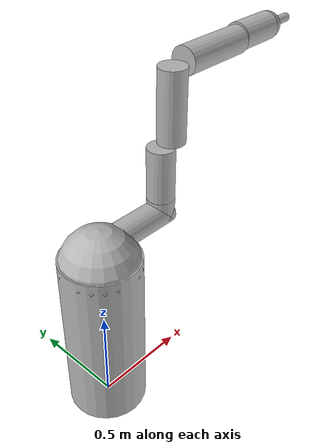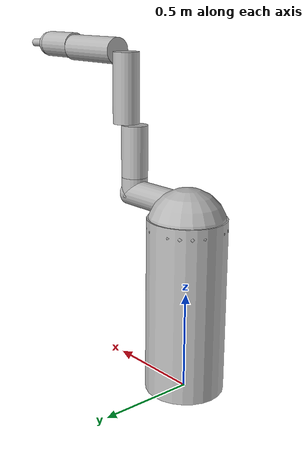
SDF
<?xml version='1.0'?>
<sdf version='1.6'>
		<model name="pmbaxter4">
			<self_collide>true</self_collide>
			<pose>0.0 0.0 0.0 0.0 0.0 0.0</pose>
			<!-- Start of parts of the pmodel pmbaxter4 -->
			<!-- End of parts of the pmodel pmbaxter4 -->

			<!-- Start of links of the pmodel pmbaxter4 -->
			<!-- link full name is pmbaxter4::LiBase -->
			<link name="1-LiBase">
					<pose>0.0 0.0 0.0 0.0 0.0 0.0</pose>
					<inertial>
						<pose>0.0 0.0 0.0 0.0 0.0 0.0</pose>
						<inertia>
							<ixx>1.0</ixx>
							<ixy>0.0</ixy>
							<ixz>0.0</ixz>
							<iyy>1.0</iyy>
							<iyz>0.0</iyz>
							<izz>1.0</izz>
						</inertia>
						<mass>1.0</mass>
					</inertial>
					<!-- body full name is pmbaxter4::LiBase::CyB0 -->
					<collision name="1--CyB0">
						<laser_retro>0.0</laser_retro>
						<pose>0.0 0.0 0.44999998807907104 0.0 0.0 0.0</pose>
						<geometry>
							<cylinder>
								<radius>0.20000000298023224</radius>
								<length>0.8999999761581421</length>
							</cylinder>
						</geometry>
						<surface>
							<bounce>
								<restitution_coefficient>0.0</restitution_coefficient>
								<threshold>100000.0</threshold>
							</bounce>
							<friction>
								<ode>
									<mu>1.0</mu>
									<mu2>1.0</mu2>
									<fdir1>0.0 0.0 0.0</fdir1>
									<slip1>0.0</slip1>
									<slip2>0.0</slip2>
								</ode>
								<torsional>
									<coefficient>1.0</coefficient>
									<surface_radius>0.0</surface_radius>
								</torsional>
							</friction>
						</surface>
					</collision>
					<visual name="1--CyB0">
						<laser_retro>0.0</laser_retro>
						<pose>0.0 0.0 0.44999998807907104 0.0 0.0 0.0</pose>
						<geometry>
							<cylinder>
								<radius>0.20000000298023224</radius>
								<length>0.8999999761581421</length>
							</cylinder>
						</geometry>
						<surface>
							<bounce>
								<restitution_coefficient>0.0</restitution_coefficient>
								<threshold>100000.0</threshold>
							</bounce>
							<friction>
								<ode>
									<mu>1.0</mu>
									<mu2>1.0</mu2>
									<fdir1>0.0 0.0 0.0</fdir1>
									<slip1>0.0</slip1>
									<slip2>0.0</slip2>
								</ode>
								<torsional>
									<coefficient>1.0</coefficient>
									<surface_radius>0.0</surface_radius>
								</torsional>
							</friction>
						</surface>
					</visual>
					<!-- body full name is pmbaxter4::LiBase::CyB1 -->
					<collision name="2--CyB1">
						<laser_retro>0.0</laser_retro>
						<pose>0.20000000298023224 0.0 0.949999988079071 0.0 -1.5707499980926514 0.0</pose>
						<geometry>
							<cylinder>
								<radius>0.0689999982714653</radius>
								<length>0.47099998593330383</length>
							</cylinder>
						</geometry>
						<surface>
							<bounce>
								<restitution_coefficient>0.0</restitution_coefficient>
								<threshold>100000.0</threshold>
							</bounce>
							<friction>
								<ode>
									<mu>1.0</mu>
									<mu2>1.0</mu2>
									<fdir1>0.0 0.0 0.0</fdir1>
									<slip1>0.0</slip1>
									<slip2>0.0</slip2>
								</ode>
								<torsional>
									<coefficient>1.0</coefficient>
									<surface_radius>0.0</surface_radius>
								</torsional>
							</friction>
						</surface>
					</collision>
					<visual name="2--CyB1">
						<laser_retro>0.0</laser_retro>
						<pose>0.20000000298023224 0.0 0.949999988079071 0.0 -1.5707499980926514 0.0</pose>
						<geometry>
							<cylinder>
								<radius>0.0689999982714653</radius>
								<length>0.47099998593330383</length>
							</cylinder>
						</geometry>
						<surface>
							<bounce>
								<restitution_coefficient>0.0</restitution_coefficient>
								<threshold>100000.0</threshold>
							</bounce>
							<friction>
								<ode>
									<mu>1.0</mu>
									<mu2>1.0</mu2>
									<fdir1>0.0 0.0 0.0</fdir1>
									<slip1>0.0</slip1>
									<slip2>0.0</slip2>
								</ode>
								<torsional>
									<coefficient>1.0</coefficient>
									<surface_radius>0.0</surface_radius>
								</torsional>
							</friction>
						</surface>
					</visual>
					<!-- body full name is pmbaxter4::LiBase::CyB2 -->
					<collision name="3--CyB2">
						<laser_retro>0.0</laser_retro>
						<pose>0.4000000059604645 0.0 0.984499990940094 0.0 0.0 0.0</pose>
						<geometry>
							<cylinder>
								<radius>0.0689999982714653</radius>
								<length>0.10000000149011612</length>
							</cylinder>
						</geometry>
						<surface>
							<bounce>
								<restitution_coefficient>0.0</restitution_coefficient>
								<threshold>100000.0</threshold>
							</bounce>
							<friction>
								<ode>
									<mu>1.0</mu>
									<mu2>1.0</mu2>
									<fdir1>0.0 0.0 0.0</fdir1>
									<slip1>0.0</slip1>
									<slip2>0.0</slip2>
								</ode>
								<torsional>
									<coefficient>1.0</coefficient>
									<surface_radius>0.0</surface_radius>
								</torsional>
							</friction>
						</surface>
					</collision>
					<visual name="3--CyB2">
						<laser_retro>0.0</laser_retro>
						<pose>0.4000000059604645 0.0 0.984499990940094 0.0 0.0 0.0</pose>
						<geometry>
							<cylinder>
								<radius>0.0689999982714653</radius>
								<length>0.10000000149011612</length>
							</cylinder>
						</geometry>
						<surface>
							<bounce>
								<restitution_coefficient>0.0</restitution_coefficient>
								<threshold>100000.0</threshold>
							</bounce>
							<friction>
								<ode>
									<mu>1.0</mu>
									<mu2>1.0</mu2>
									<fdir1>0.0 0.0 0.0</fdir1>
									<slip1>0.0</slip1>
									<slip2>0.0</slip2>
								</ode>
								<torsional>
									<coefficient>1.0</coefficient>
									<surface_radius>0.0</surface_radius>
								</torsional>
							</friction>
						</surface>
					</visual>
					<!-- body full name is pmbaxter4::LiBase::SpB -->
					<collision name="4--SpB">
						<laser_retro>0.0</laser_retro>
						<pose>0.0 0.0 0.8500000238418579 0.0 0.0 0.0</pose>
						<geometry>
							<sphere>
								<radius>0.20000000298023224</radius>
							</sphere>
						</geometry>
						<surface>
							<bounce>
								<restitution_coefficient>0.0</restitution_coefficient>
								<threshold>100000.0</threshold>
							</bounce>
							<friction>
								<ode>
									<mu>1.0</mu>
									<mu2>1.0</mu2>
									<fdir1>0.0 0.0 0.0</fdir1>
									<slip1>0.0</slip1>
									<slip2>0.0</slip2>
								</ode>
								<torsional>
									<coefficient>1.0</coefficient>
									<surface_radius>0.0</surface_radius>
								</torsional>
							</friction>
						</surface>
					</collision>
					<visual name="4--SpB">
						<laser_retro>0.0</laser_retro>
						<pose>0.0 0.0 0.8500000238418579 0.0 0.0 0.0</pose>
						<geometry>
							<sphere>
								<radius>0.20000000298023224</radius>
							</sphere>
						</geometry>
						<surface>
							<bounce>
								<restitution_coefficient>0.0</restitution_coefficient>
								<threshold>100000.0</threshold>
							</bounce>
							<friction>
								<ode>
									<mu>1.0</mu>
									<mu2>1.0</mu2>
									<fdir1>0.0 0.0 0.0</fdir1>
									<slip1>0.0</slip1>
									<slip2>0.0</slip2>
								</ode>
								<torsional>
									<coefficient>1.0</coefficient>
									<surface_radius>0.0</surface_radius>
								</torsional>
							</friction>
						</surface>
					</visual>
			</link>
			<!-- link full name is pmbaxter4::LiS0 -->
			<link name="2-LiS0">
					<pose>0.4000000059604645 0.0 1.034500002861023 0.0 0.0 0.0</pose>
					<inertial>
						<pose>0.0 0.0 0.0 0.0 0.0 0.0</pose>
						<inertia>
							<ixx>1.0</ixx>
							<ixy>0.0</ixy>
							<ixz>0.0</ixz>
							<iyy>1.0</iyy>
							<iyz>0.0</iyz>
							<izz>1.0</izz>
						</inertia>
						<mass>1.0</mass>
					</inertial>
					<!-- body full name is pmbaxter4::LiS0::CyS -->
					<collision name="5--CyS">
						<laser_retro>0.0</laser_retro>
						<pose>0.0 0.0 0.13517500460147858 0.0 0.0 0.0</pose>
						<geometry>
							<cylinder>
								<radius>0.0689999982714653</radius>
								<length>0.27035000920295715</length>
							</cylinder>
						</geometry>
						<surface>
							<bounce>
								<restitution_coefficient>0.0</restitution_coefficient>
								<threshold>100000.0</threshold>
							</bounce>
							<friction>
								<ode>
									<mu>1.0</mu>
									<mu2>1.0</mu2>
									<fdir1>0.0 0.0 0.0</fdir1>
									<slip1>0.0</slip1>
									<slip2>0.0</slip2>
								</ode>
								<torsional>
									<coefficient>1.0</coefficient>
									<surface_radius>0.0</surface_radius>
								</torsional>
							</friction>
						</surface>
					</collision>
					<visual name="5--CyS">
						<laser_retro>0.0</laser_retro>
						<pose>0.0 0.0 0.13517500460147858 0.0 0.0 0.0</pose>
						<geometry>
							<cylinder>
								<radius>0.0689999982714653</radius>
								<length>0.27035000920295715</length>
							</cylinder>
						</geometry>
						<surface>
							<bounce>
								<restitution_coefficient>0.0</restitution_coefficient>
								<threshold>100000.0</threshold>
							</bounce>
							<friction>
								<ode>
									<mu>1.0</mu>
									<mu2>1.0</mu2>
									<fdir1>0.0 0.0 0.0</fdir1>
									<slip1>0.0</slip1>
									<slip2>0.0</slip2>
								</ode>
								<torsional>
									<coefficient>1.0</coefficient>
									<surface_radius>0.0</surface_radius>
								</torsional>
							</friction>
						</surface>
					</visual>
			</link>
			<!-- link full name is pmbaxter4::LiS1 -->
			<link name="3-LiS1">
					<pose>0.4690000042319298 0.0 1.30485001206398 0.0 0.0 0.0</pose>
					<inertial>
						<pose>0.0 0.0 0.0 0.0 0.0 0.0</pose>
						<inertia>
							<ixx>1.0</ixx>
							<ixy>0.0</ixy>
							<ixz>0.0</ixz>
							<iyy>1.0</iyy>
							<iyz>0.0</iyz>
							<izz>1.0</izz>
						</inertia>
						<mass>1.0</mass>
					</inertial>
			</link>
			<!-- link full name is pmbaxter4::LiE0 -->
			<link name="4-LiE0">
					<pose>0.4690000042319298 0.0 1.30485001206398 0.0 0.0 0.0</pose>
					<inertial>
						<pose>0.0 0.0 0.0 0.0 0.0 0.0</pose>
						<inertia>
							<ixx>1.0</ixx>
							<ixy>0.0</ixy>
							<ixz>0.0</ixz>
							<iyy>1.0</iyy>
							<iyz>0.0</iyz>
							<izz>1.0</izz>
						</inertia>
						<mass>1.0</mass>
					</inertial>
					<!-- body full name is pmbaxter4::LiE0::CyE -->
					<collision name="6--CyE">
						<laser_retro>0.0</laser_retro>
						<pose>0.0 0.0 0.18217499554157257 0.0 0.0 0.0</pose>
						<geometry>
							<cylinder>
								<radius>0.0689999982714653</radius>
								<length>0.36434999108314514</length>
							</cylinder>
						</geometry>
						<surface>
							<bounce>
								<restitution_coefficient>0.0</restitution_coefficient>
								<threshold>100000.0</threshold>
							</bounce>
							<friction>
								<ode>
									<mu>1.0</mu>
									<mu2>1.0</mu2>
									<fdir1>0.0 0.0 0.0</fdir1>
									<slip1>0.0</slip1>
									<slip2>0.0</slip2>
								</ode>
								<torsional>
									<coefficient>1.0</coefficient>
									<surface_radius>0.0</surface_radius>
								</torsional>
							</friction>
						</surface>
					</collision>
					<visual name="6--CyE">
						<laser_retro>0.0</laser_retro>
						<pose>0.0 0.0 0.18217499554157257 0.0 0.0 0.0</pose>
						<geometry>
							<cylinder>
								<radius>0.0689999982714653</radius>
								<length>0.36434999108314514</length>
							</cylinder>
						</geometry>
						<surface>
							<bounce>
								<restitution_coefficient>0.0</restitution_coefficient>
								<threshold>100000.0</threshold>
							</bounce>
							<friction>
								<ode>
									<mu>1.0</mu>
									<mu2>1.0</mu2>
									<fdir1>0.0 0.0 0.0</fdir1>
									<slip1>0.0</slip1>
									<slip2>0.0</slip2>
								</ode>
								<torsional>
									<coefficient>1.0</coefficient>
									<surface_radius>0.0</surface_radius>
								</torsional>
							</friction>
						</surface>
					</visual>
			</link>
			<!-- link full name is pmbaxter4::LiE1 -->
			<link name="5-LiE1">
					<pose>0.5380000025033951 0.0 1.6692000031471252 0.0 1.5707499980926514 0.0</pose>
					<inertial>
						<pose>0.0 0.0 0.0 0.0 0.0 0.0</pose>
						<inertia>
							<ixx>1.0</ixx>
							<ixy>0.0</ixy>
							<ixz>0.0</ixz>
							<iyy>1.0</iyy>
							<iyz>0.0</iyz>
							<izz>1.0</izz>
						</inertia>
						<mass>1.0</mass>
					</inertial>
			</link>
			<!-- link full name is pmbaxter4::LiW0 -->
			<link name="6-LiW0">
					<pose>0.5380000025033951 0.0 1.6692000031471252 0.0 1.5707499980926514 0.0</pose>
					<inertial>
						<pose>0.0 0.0 0.0 0.0 0.0 0.0</pose>
						<inertia>
							<ixx>1.0</ixx>
							<ixy>0.0</ixy>
							<ixz>0.0</ixz>
							<iyy>1.0</iyy>
							<iyz>0.0</iyz>
							<izz>1.0</izz>
						</inertia>
						<mass>1.0</mass>
					</inertial>
					<!-- body full name is pmbaxter4::LiW0::CyWA -->
					<collision name="7--CyWA">
						<laser_retro>0.0</laser_retro>
						<pose>0.0 0.0 0.18714499473571777 0.0 0.0 0.0</pose>
						<geometry>
							<cylinder>
								<radius>0.0689999982714653</radius>
								<length>0.37428998947143555</length>
							</cylinder>
						</geometry>
						<surface>
							<bounce>
								<restitution_coefficient>0.0</restitution_coefficient>
								<threshold>100000.0</threshold>
							</bounce>
							<friction>
								<ode>
									<mu>1.0</mu>
									<mu2>1.0</mu2>
									<fdir1>0.0 0.0 0.0</fdir1>
									<slip1>0.0</slip1>
									<slip2>0.0</slip2>
								</ode>
								<torsional>
									<coefficient>1.0</coefficient>
									<surface_radius>0.0</surface_radius>
								</torsional>
							</friction>
						</surface>
					</collision>
					<visual name="7--CyWA">
						<laser_retro>0.0</laser_retro>
						<pose>0.0 0.0 0.18714499473571777 0.0 0.0 0.0</pose>
						<geometry>
							<cylinder>
								<radius>0.0689999982714653</radius>
								<length>0.37428998947143555</length>
							</cylinder>
						</geometry>
						<surface>
							<bounce>
								<restitution_coefficient>0.0</restitution_coefficient>
								<threshold>100000.0</threshold>
							</bounce>
							<friction>
								<ode>
									<mu>1.0</mu>
									<mu2>1.0</mu2>
									<fdir1>0.0 0.0 0.0</fdir1>
									<slip1>0.0</slip1>
									<slip2>0.0</slip2>
								</ode>
								<torsional>
									<coefficient>1.0</coefficient>
									<surface_radius>0.0</surface_radius>
								</torsional>
							</friction>
						</surface>
					</visual>
			</link>
			<!-- link full name is pmbaxter4::LiW1 -->
			<link name="7-LiW1">
					<pose>0.9122899919748306 0.0 1.6792000029236078 0.0 1.5707499980926514 0.0</pose>
					<inertial>
						<pose>0.0 0.0 0.0 0.0 0.0 0.0</pose>
						<inertia>
							<ixx>1.0</ixx>
							<ixy>0.0</ixy>
							<ixz>0.0</ixz>
							<iyy>1.0</iyy>
							<iyz>0.0</iyz>
							<izz>1.0</izz>
						</inertia>
						<mass>1.0</mass>
					</inertial>
					<!-- body full name is pmbaxter4::LiW1::CyWB -->
					<collision name="8--CyWB">
						<laser_retro>0.0</laser_retro>
						<pose>0.0 0.0 0.11476500332355499 0.0 0.0 0.0</pose>
						<geometry>
							<cylinder>
								<radius>0.0689999982714653</radius>
								<length>0.22953000664710999</length>
							</cylinder>
						</geometry>
						<surface>
							<bounce>
								<restitution_coefficient>0.0</restitution_coefficient>
								<threshold>100000.0</threshold>
							</bounce>
							<friction>
								<ode>
									<mu>1.0</mu>
									<mu2>1.0</mu2>
									<fdir1>0.0 0.0 0.0</fdir1>
									<slip1>0.0</slip1>
									<slip2>0.0</slip2>
								</ode>
								<torsional>
									<coefficient>1.0</coefficient>
									<surface_radius>0.0</surface_radius>
								</torsional>
							</friction>
						</surface>
					</collision>
					<visual name="8--CyWB">
						<laser_retro>0.0</laser_retro>
						<pose>0.0 0.0 0.11476500332355499 0.0 0.0 0.0</pose>
						<geometry>
							<cylinder>
								<radius>0.0689999982714653</radius>
								<length>0.22953000664710999</length>
							</cylinder>
						</geometry>
						<surface>
							<bounce>
								<restitution_coefficient>0.0</restitution_coefficient>
								<threshold>100000.0</threshold>
							</bounce>
							<friction>
								<ode>
									<mu>1.0</mu>
									<mu2>1.0</mu2>
									<fdir1>0.0 0.0 0.0</fdir1>
									<slip1>0.0</slip1>
									<slip2>0.0</slip2>
								</ode>
								<torsional>
									<coefficient>1.0</coefficient>
									<surface_radius>0.0</surface_radius>
								</torsional>
							</friction>
						</surface>
					</visual>
			</link>
			<!-- link full name is pmbaxter4::LiW2 -->
			<link name="8-LiW2">
					<pose>1.1418199986219406 0.0 1.6792000029236078 0.0 1.5707499980926514 0.0</pose>
					<inertial>
						<pose>0.0 0.0 0.0 0.0 0.0 0.0</pose>
						<inertia>
							<ixx>1.0</ixx>
							<ixy>0.0</ixy>
							<ixz>0.0</ixz>
							<iyy>1.0</iyy>
							<iyz>0.0</iyz>
							<izz>1.0</izz>
						</inertia>
						<mass>1.0</mass>
					</inertial>
					<!-- body full name is pmbaxter4::LiW2::CyEE -->
					<collision name="9--CyEE">
						<laser_retro>0.0</laser_retro>
						<pose>0.0 0.0 0.08500000089406967 0.0 0.0 0.0</pose>
						<geometry>
							<cylinder>
								<radius>0.02199999988079071</radius>
								<length>0.17000000178813934</length>
							</cylinder>
						</geometry>
						<surface>
							<bounce>
								<restitution_coefficient>0.0</restitution_coefficient>
								<threshold>100000.0</threshold>
							</bounce>
							<friction>
								<ode>
									<mu>1.0</mu>
									<mu2>1.0</mu2>
									<fdir1>0.0 0.0 0.0</fdir1>
									<slip1>0.0</slip1>
									<slip2>0.0</slip2>
								</ode>
								<torsional>
									<coefficient>1.0</coefficient>
									<surface_radius>0.0</surface_radius>
								</torsional>
							</friction>
						</surface>
					</collision>
					<visual name="9--CyEE">
						<laser_retro>0.0</laser_retro>
						<pose>0.0 0.0 0.08500000089406967 0.0 0.0 0.0</pose>
						<geometry>
							<cylinder>
								<radius>0.02199999988079071</radius>
								<length>0.17000000178813934</length>
							</cylinder>
						</geometry>
						<surface>
							<bounce>
								<restitution_coefficient>0.0</restitution_coefficient>
								<threshold>100000.0</threshold>
							</bounce>
							<friction>
								<ode>
									<mu>1.0</mu>
									<mu2>1.0</mu2>
									<fdir1>0.0 0.0 0.0</fdir1>
									<slip1>0.0</slip1>
									<slip2>0.0</slip2>
								</ode>
								<torsional>
									<coefficient>1.0</coefficient>
									<surface_radius>0.0</surface_radius>
								</torsional>
							</friction>
						</surface>
					</visual>
					<!-- body full name is pmbaxter4::LiW2::SpEE -->
					<collision name="10--SpEE">
						<laser_retro>0.0</laser_retro>
						<pose>0.0 0.0 0.0 0.0 0.0 0.0</pose>
						<geometry>
							<sphere>
								<radius>0.0689999982714653</radius>
							</sphere>
						</geometry>
						<surface>
							<bounce>
								<restitution_coefficient>0.0</restitution_coefficient>
								<threshold>100000.0</threshold>
							</bounce>
							<friction>
								<ode>
									<mu>1.0</mu>
									<mu2>1.0</mu2>
									<fdir1>0.0 0.0 0.0</fdir1>
									<slip1>0.0</slip1>
									<slip2>0.0</slip2>
								</ode>
								<torsional>
									<coefficient>1.0</coefficient>
									<surface_radius>0.0</surface_radius>
								</torsional>
							</friction>
						</surface>
					</collision>
					<visual name="10--SpEE">
						<laser_retro>0.0</laser_retro>
						<pose>0.0 0.0 0.0 0.0 0.0 0.0</pose>
						<geometry>
							<sphere>
								<radius>0.0689999982714653</radius>
							</sphere>
						</geometry>
						<surface>
							<bounce>
								<restitution_coefficient>0.0</restitution_coefficient>
								<threshold>100000.0</threshold>
							</bounce>
							<friction>
								<ode>
									<mu>1.0</mu>
									<mu2>1.0</mu2>
									<fdir1>0.0 0.0 0.0</fdir1>
									<slip1>0.0</slip1>
									<slip2>0.0</slip2>
								</ode>
								<torsional>
									<coefficient>1.0</coefficient>
									<surface_radius>0.0</surface_radius>
								</torsional>
							</friction>
						</surface>
					</visual>
			</link>
			<!-- End of links of the pmodel pmbaxter4 -->

			<!-- Start of joints of the pmodel pmbaxter4 -->
			<!-- Full name of joint: pmbaxter4::LiS1::JS1 from pmbaxter4::LiS1 to pmbaxter4::LiE0-->
			<joint name="9-JS1" type="revolute">
				<pose>0.0 0.0 0.0 0.0 -0.0 0.0</pose>
				<parent>3-LiS1</parent>
				<child>4-LiE0</child>
			</joint>
			<!-- Full name of joint: pmbaxter4::LiE1::JE1 from pmbaxter4::LiE1 to pmbaxter4::LiW0-->
			<joint name="10-JE1" type="revolute">
				<pose>0.0 0.0 0.0 0.0 -0.0 0.0</pose>
				<parent>5-LiE1</parent>
				<child>6-LiW0</child>
			</joint>
			<!-- Full name of joint: pmbaxter4::LiW1::JW1 from pmbaxter4::LiW1 to pmbaxter4::LiW2-->
			<joint name="11-JW1" type="revolute">
				<pose>-1.063382733046403E-5 0.0 -0.22953000640078425 0.0 -0.0 0.0</pose>
				<parent>7-LiW1</parent>
				<child>8-LiW2</child>
			</joint>
			<!-- Full name of joint: pmbaxter4::LiW0::JW0 from pmbaxter4::LiW0 to pmbaxter4::LiW1-->
			<joint name="12-JW0" type="revolute">
				<pose>0.009982659396281512 0.0 -0.37429045235676917 0.0 -0.0 0.0</pose>
				<parent>6-LiW0</parent>
				<child>7-LiW1</child>
			</joint>
			<!-- Full name of joint: pmbaxter4::LiS0::JS0 from pmbaxter4::LiS0 to pmbaxter4::LiS1-->
			<joint name="13-JS0" type="revolute">
				<pose>-0.0689999982714653 0.0 -0.27035000920295715 0.0 -0.0 0.0</pose>
				<parent>2-LiS0</parent>
				<child>3-LiS1</child>
			</joint>
			<!-- Full name of joint: pmbaxter4::LiE0::JE0 from pmbaxter4::LiE0 to pmbaxter4::LiE1-->
			<joint name="14-JE0" type="revolute">
				<pose>0.3643467940117604 0.0 -0.06901687805966011 0.0 -1.5707499980926514 0.0</pose>
				<parent>4-LiE0</parent>
				<child>5-LiE1</child>
			</joint>
			<!-- End of joints of the pmodel pmbaxter4 -->

			<!-- Start of fixed connections of the pmodel pmbaxter4 -->
			<!-- End of fixed connections of the pmodel pmbaxter4 -->
		</model>
</sdf>
